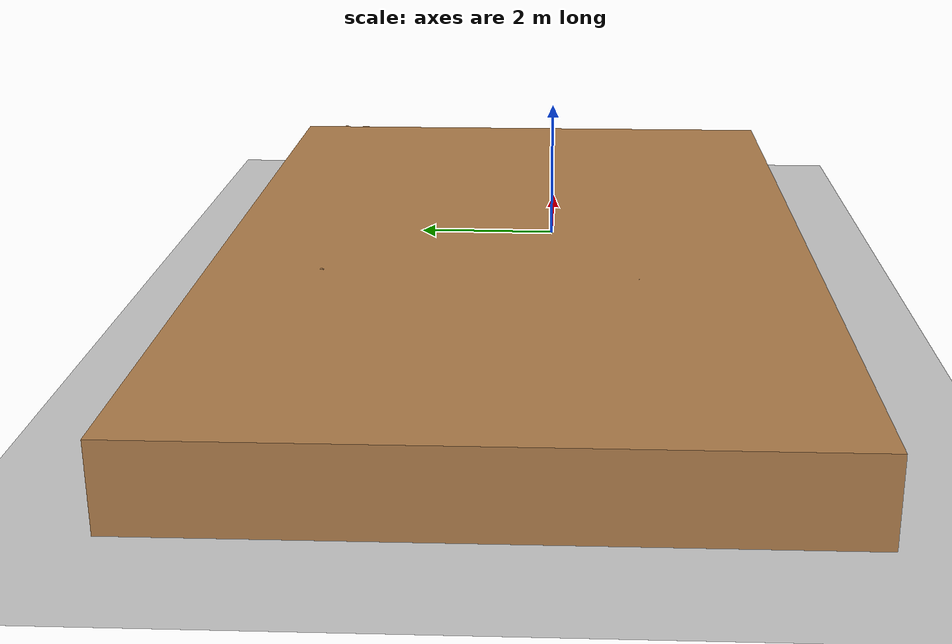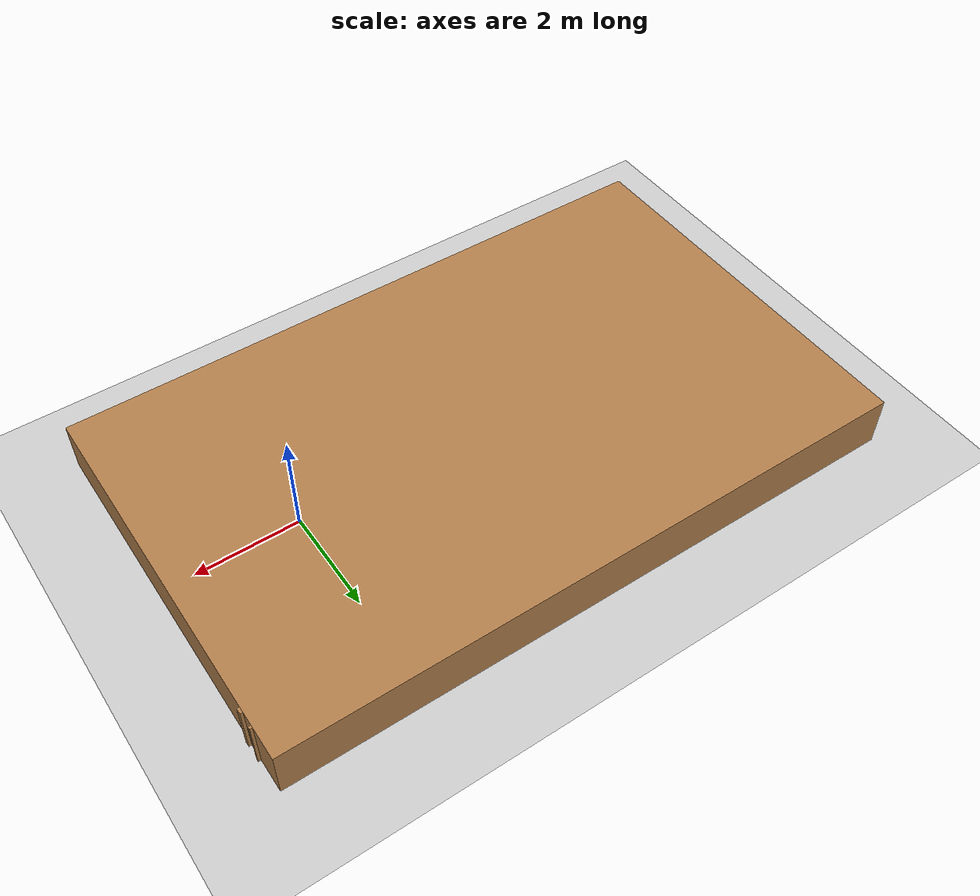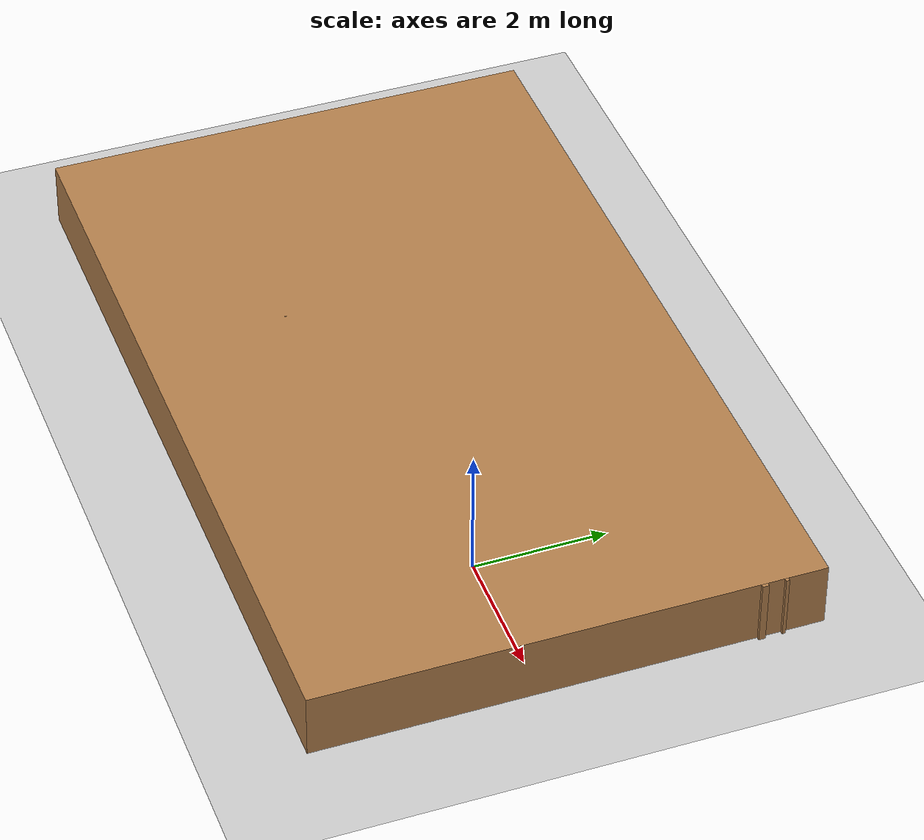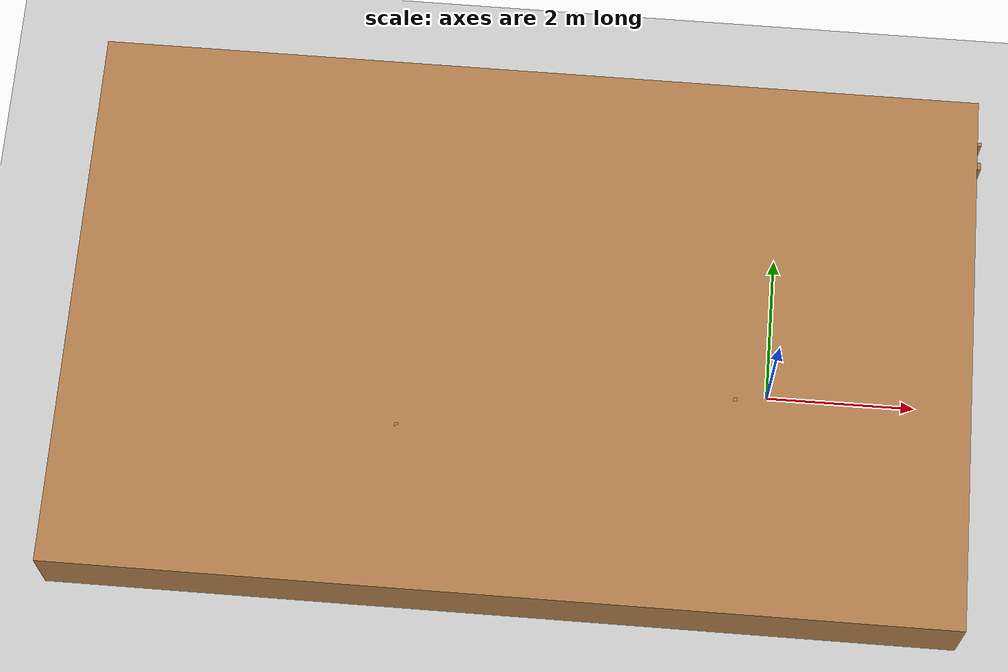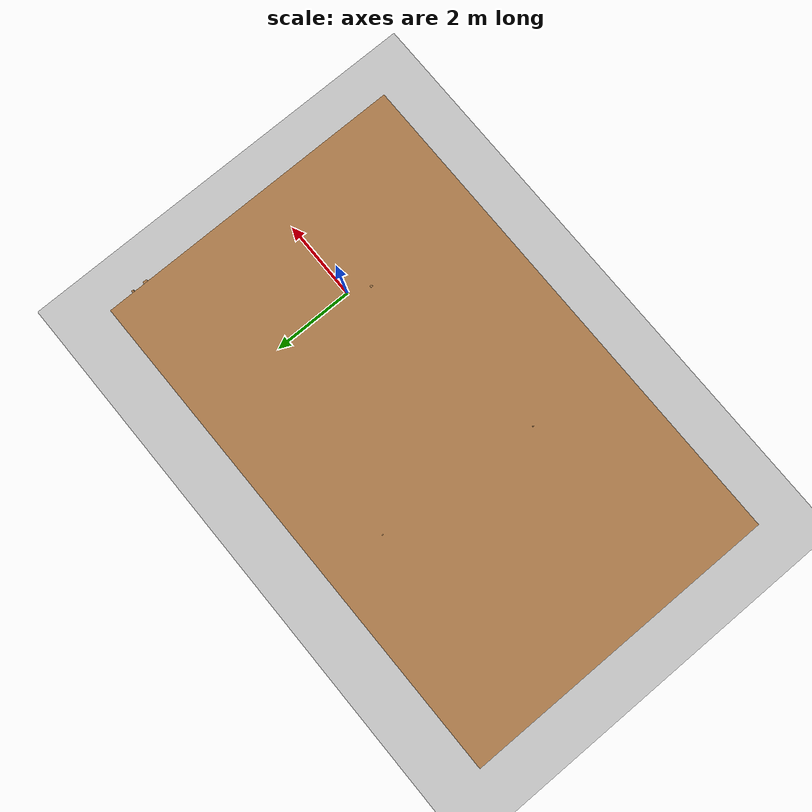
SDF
<?xml version="1.0" ?>
<sdf version="1.7">
  <world name="big_map_7_world">
    <light name="sun" type="directional">
      <cast_shadows>1</cast_shadows>
      <pose>0 0 10 0 0 0</pose>
      <diffuse>0.8 0.8 0.8 1</diffuse>
      <specular>0.2 0.2 0.2 1</specular>
      <direction>-0.5 0.1 -0.9</direction>
    </light>
    <model name="ground_plane">
      <static>1</static>
      <link name="link">
        <collision name="collision">
          <geometry>
            <plane>
              <normal>0 0 1</normal>
              <size>100 100</size>
            </plane>
          </geometry>
        </collision>
        <visual name="visual">
          <cast_shadows>0</cast_shadows>
          <geometry>
            <plane>
              <normal>0 0 1</normal>
              <size>100 100</size>
            </plane>
          </geometry>
          <material>
            <script>
              <uri>file://media/materials/scripts/gazebo.material</uri>
              <name>Gazebo/Grey</name>
            </script>
          </material>
        </visual>
      </link>
    </model>
    <gravity>0 0 -9.8</gravity>
    <physics type="ode">
      <max_step_size>0.001</max_step_size>
      <real_time_factor>1</real_time_factor>
      <real_time_update_rate>1000</real_time_update_rate>
    </physics>
    <model name="big_map_7_walls">
      <static>1</static>
      <link name="wall_link">

        <collision name="wall_col_0">
          <pose>-4.9350 -1.0950 0.5000 0 0 0</pose>
          <geometry>
            <box>
              <size>0.0500 0.0500 1.0000</size>
            </box>
          </geometry>
        </collision>
        <visual name="wall_vis_0">
          <pose>-4.9350 -1.0950 0.5000 0 0 0</pose>
          <geometry>
            <box>
              <size>0.0500 0.0500 1.0000</size>
            </box>
          </geometry>
          <material>
            <script>
              <uri>file://media/materials/scripts/gazebo.material</uri>
              <name>Gazebo/Wood</name>
            </script>
          </material>
        </visual>

        <collision name="wall_col_1">
          <pose>-0.4850 -0.3950 0.5000 0 0 0</pose>
          <geometry>
            <box>
              <size>0.0500 0.0500 1.0000</size>
            </box>
          </geometry>
        </collision>
        <visual name="wall_vis_1">
          <pose>-0.4850 -0.3950 0.5000 0 0 0</pose>
          <geometry>
            <box>
              <size>0.0500 0.0500 1.0000</size>
            </box>
          </geometry>
          <material>
            <script>
              <uri>file://media/materials/scripts/gazebo.material</uri>
              <name>Gazebo/Wood</name>
            </script>
          </material>
        </visual>

        <collision name="wall_col_2">
          <pose>-4.6850 2.7550 0.5000 0 0 0</pose>
          <geometry>
            <box>
              <size>0.0500 0.0500 1.0000</size>
            </box>
          </geometry>
        </collision>
        <visual name="wall_vis_2">
          <pose>-4.6850 2.7550 0.5000 0 0 0</pose>
          <geometry>
            <box>
              <size>0.0500 0.0500 1.0000</size>
            </box>
          </geometry>
          <material>
            <script>
              <uri>file://media/materials/scripts/gazebo.material</uri>
              <name>Gazebo/Wood</name>
            </script>
          </material>
        </visual>

        <collision name="wall_col_3">
          <pose>2.6650 3.2300 0.5000 0 0 0</pose>
          <geometry>
            <box>
              <size>0.0500 0.1000 1.0000</size>
            </box>
          </geometry>
        </collision>
        <visual name="wall_vis_3">
          <pose>2.6650 3.2300 0.5000 0 0 0</pose>
          <geometry>
            <box>
              <size>0.0500 0.1000 1.0000</size>
            </box>
          </geometry>
          <material>
            <script>
              <uri>file://media/materials/scripts/gazebo.material</uri>
              <name>Gazebo/Wood</name>
            </script>
          </material>
        </visual>

        <collision name="wall_col_4">
          <pose>2.6650 3.5550 0.5000 0 0 0</pose>
          <geometry>
            <box>
              <size>0.0500 0.0500 1.0000</size>
            </box>
          </geometry>
        </collision>
        <visual name="wall_vis_4">
          <pose>2.6650 3.5550 0.5000 0 0 0</pose>
          <geometry>
            <box>
              <size>0.0500 0.0500 1.0000</size>
            </box>
          </geometry>
          <material>
            <script>
              <uri>file://media/materials/scripts/gazebo.material</uri>
              <name>Gazebo/Wood</name>
            </script>
          </material>
        </visual>

        <collision name="wall_col_5">
          <pose>-3.4100 0.4300 0.5000 0 0 0</pose>
          <geometry>
            <box>
              <size>12.1000 7.5000 1.0000</size>
            </box>
          </geometry>
        </collision>
        <visual name="wall_vis_5">
          <pose>-3.4100 0.4300 0.5000 0 0 0</pose>
          <geometry>
            <box>
              <size>12.1000 7.5000 1.0000</size>
            </box>
          </geometry>
          <material>
            <script>
              <uri>file://media/materials/scripts/gazebo.material</uri>
              <name>Gazebo/Wood</name>
            </script>
          </material>
        </visual>
      </link>
    </model>
  </world>
</sdf>
